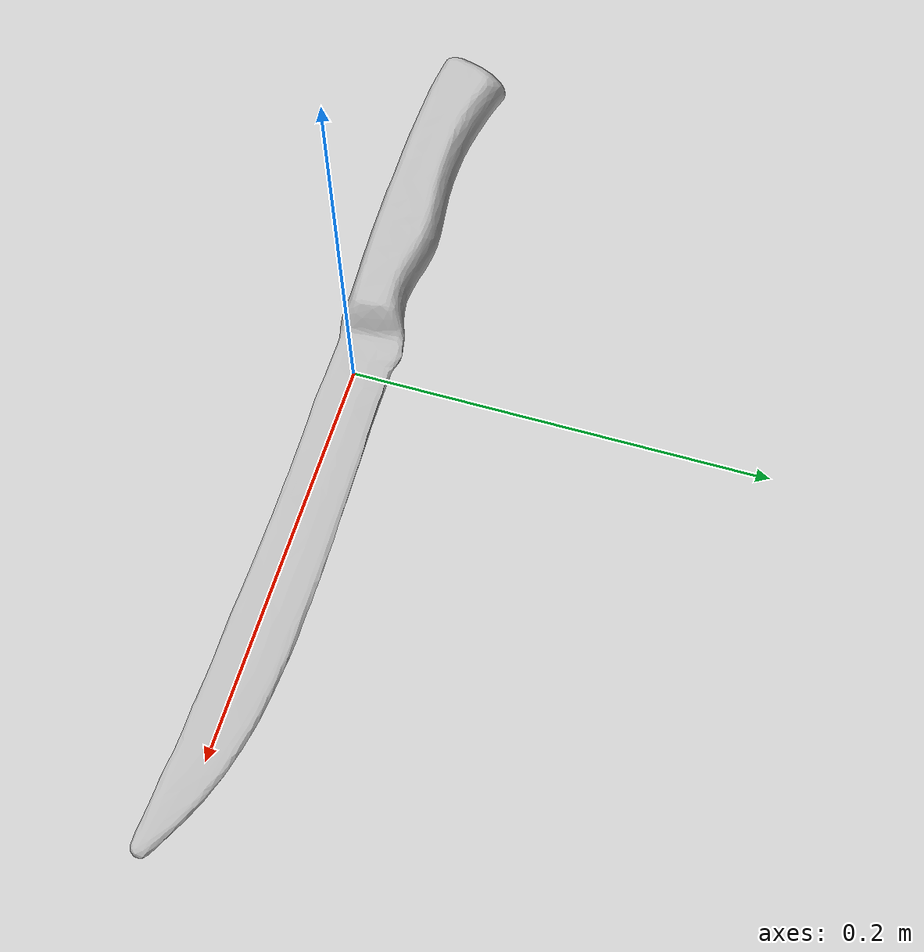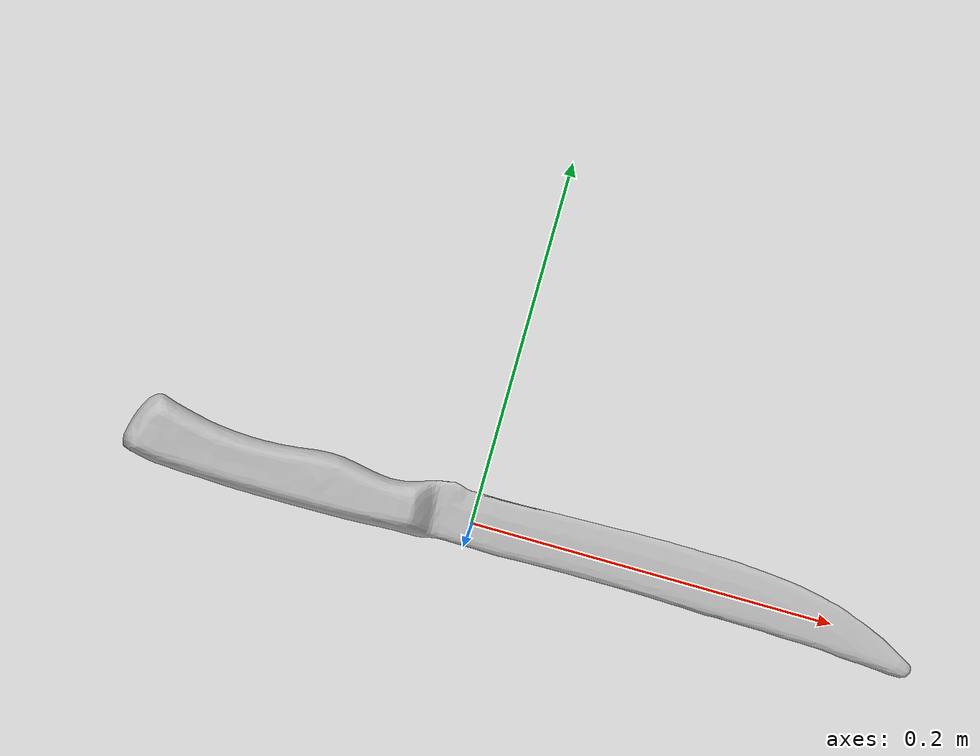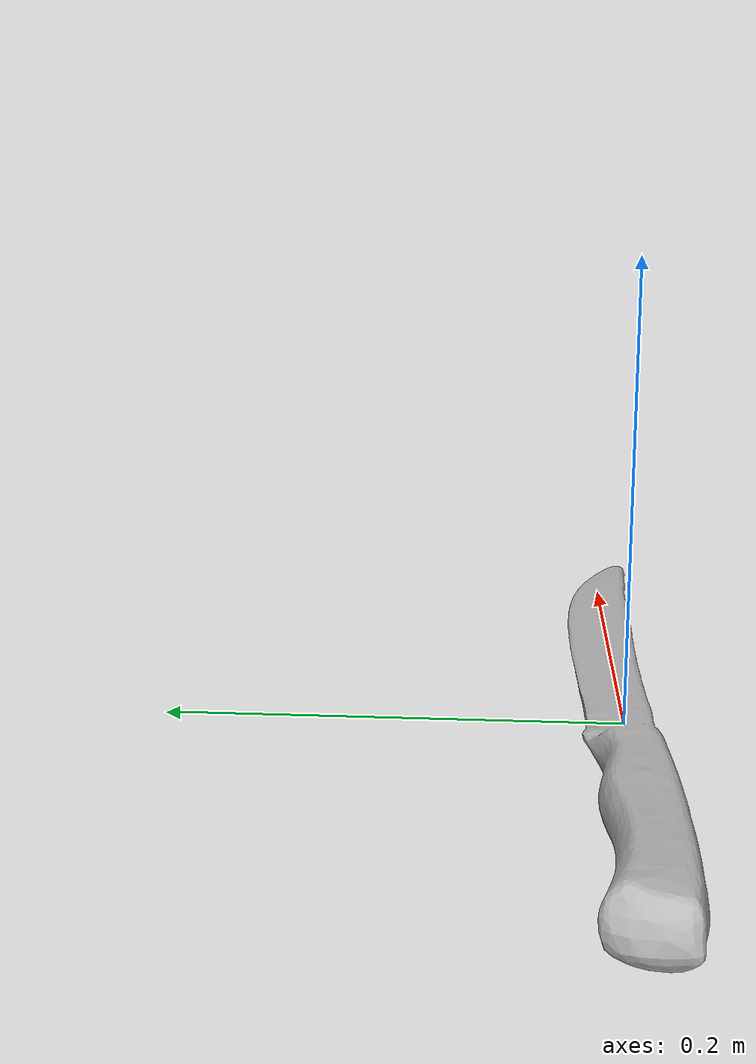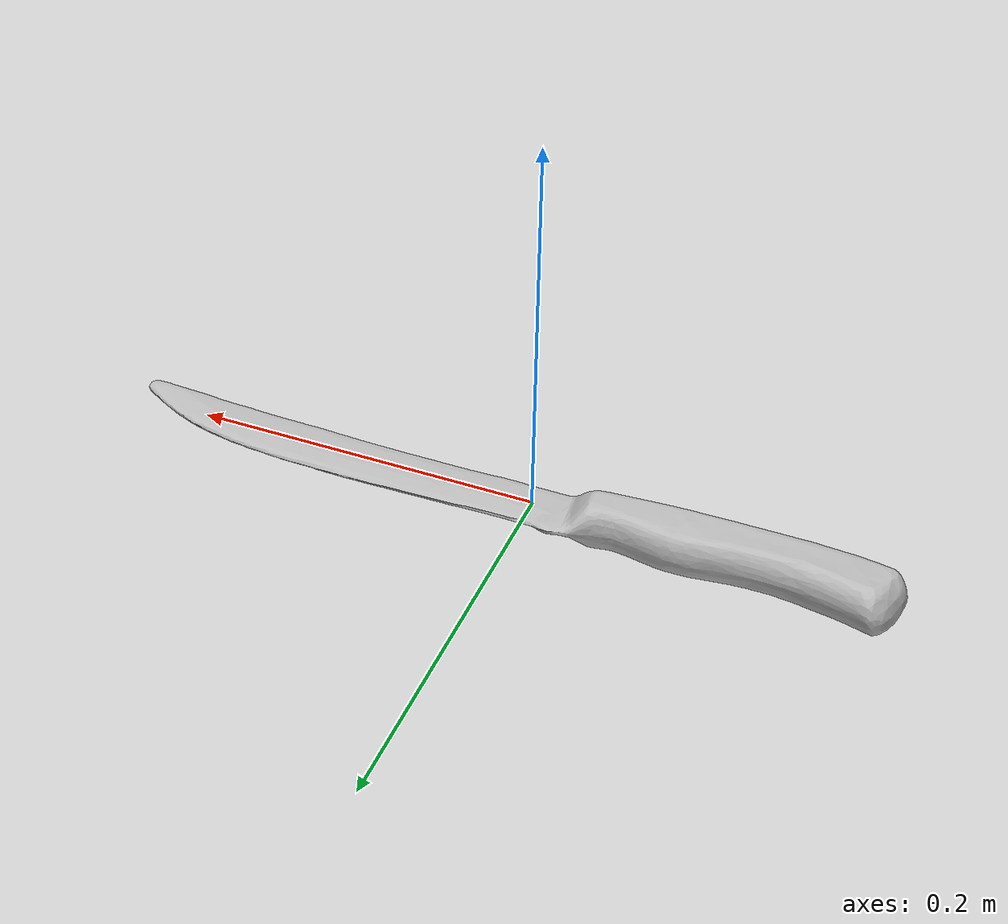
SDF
<?xml version='1.0'?>
<sdf version='1.6'>
	<model name='a_knifekitchen3'>
		<static>false</static>
		<pose>0 0 0 0 0 0</pose>

		<link name='link'>
			<inertial>
			<mass>0.22</mass>
			<pose>0.027414 0.0018516 0.006439 0 0 0</pose>
				<inertia>
					<ixx>1.4524e-05</ixx>
					<ixy>0</ixy>
					<ixz>0</ixz>
					<iyy>0.00017907</iyy>
					<iyz>0</iyz>
					<izz>0.00016613</izz>
				</inertia>
			</inertial>
			<sensor name="tool_contact_sensor" type="contact">
				<always_on>true</always_on>
				<update_rate>30.0</update_rate>
				<contact>
					<collision>collision</collision>
				</contact>
				<plugin name="tool_bumper" filename="libgazebo_ros_bumper.so">
					<bumperTopicName>tool_contact_sensor_state</bumperTopicName>
					<frameName>world</frameName>
				</plugin>
			</sensor>
			<collision name='collision'>
				<geometry>
					<mesh>
						<uri>model://a_knifekitchen3/a_knifekitchen3.dae</uri>
					</mesh>
				</geometry>
				<surface>
					<friction>
						<ode>
							<mu>0.2</mu>
							<mu2>0.2</mu2>
						</ode>
					</friction>
				</surface>
			</collision>
			<visual name='visual'>
				<geometry>
					<mesh>
						<uri>model://a_knifekitchen3/a_knifekitchen3.dae</uri>
					</mesh>
				</geometry>
			</visual>
		</link>
	</model>
</sdf>
